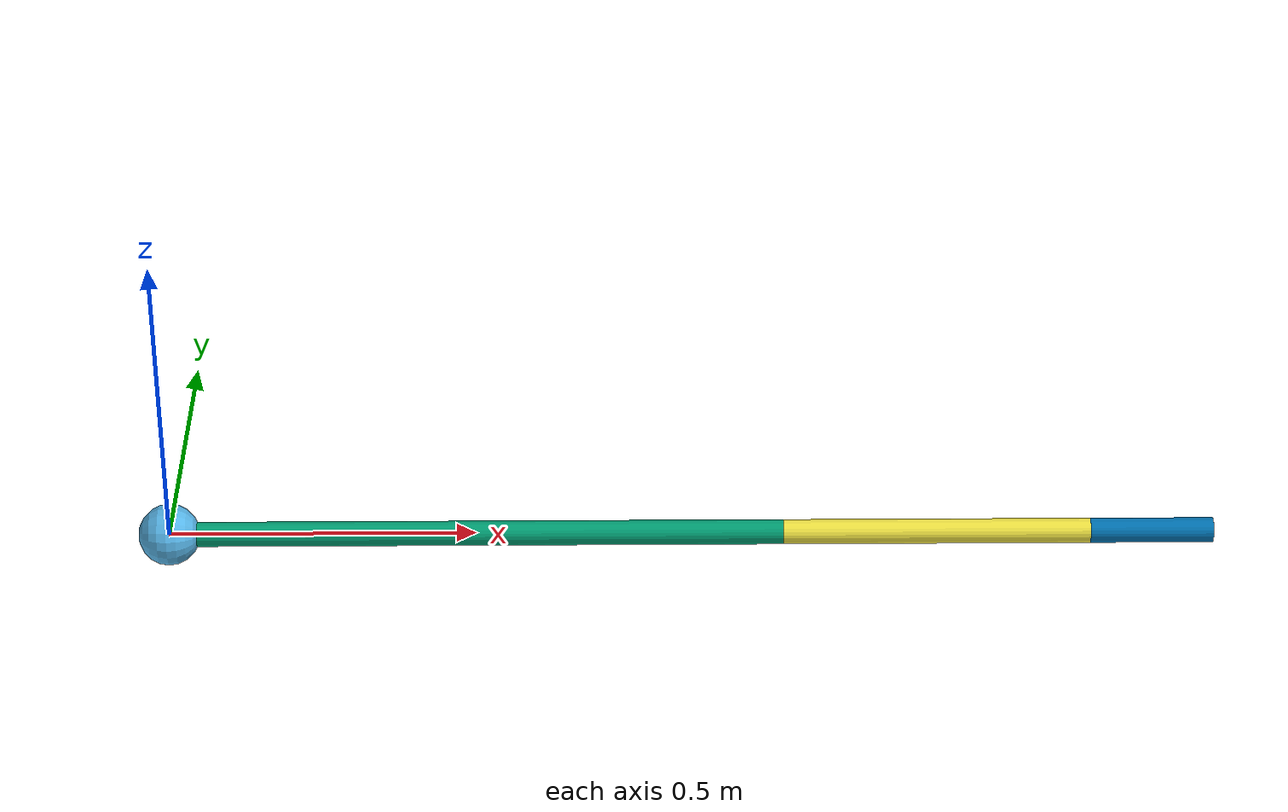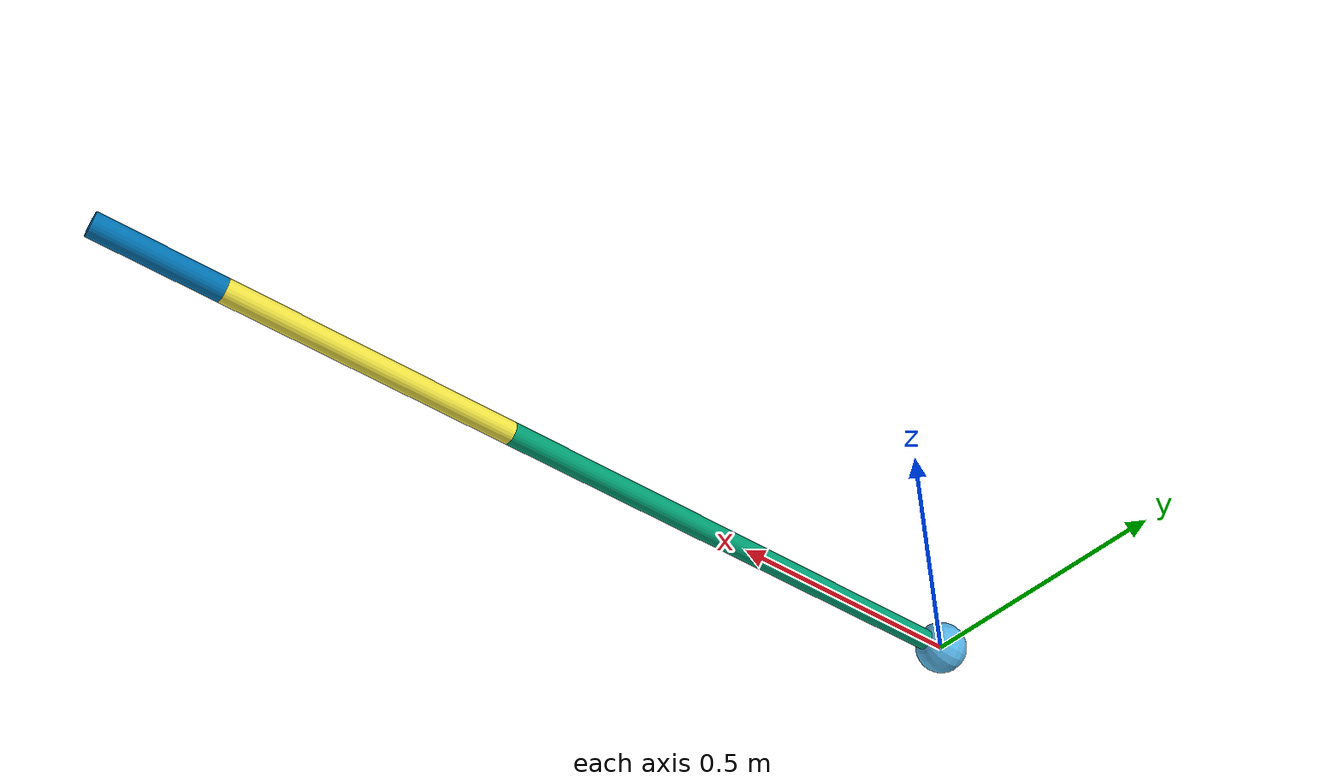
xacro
<?xml version="1.0"?>
<robot xmlns:xacro="http://www.ros.org/wiki/xacro" name="m">
  <xacro:property name="L1" value="1.0"/>
  <xacro:property name="L2" value="0.5"/>
  <xacro:property name="L3" value="0.2"/>
  <xacro:property name="rho" value="0.5"/>

  <gazebo>
    <plugin name="gazebo_ros_control" filename="libgazebo_ros_control.so">
      <robotNamespace>/rrr</robotNamespace>
    </plugin>
  </gazebo>

  <gazebo reference="">
    <self_collide>1</self_collide>
  </gazebo>
  <link name="world">
    <inertial>
      <mass value="1.0" />
      <inertia ixx="1.0" ixy="0.0" ixz="0.0" iyy="1.0" iyz="0.0" izz="1.0" />
    </inertial>
  </link>

  <link name="link0">
    <visual>
      <geometry>
        <sphere radius="0.05"/>
      </geometry>
      <origin xyz="0 0 0" rpy="0 1.5707963 0"/>
    </visual>
    <inertial>
      <mass value="1.0" />
      <inertia ixx="1.0" ixy="0.0" ixz="0.0" iyy="1.0" iyz="0.0" izz="1.0" />
    </inertial>
  </link>

  <link name="link1">
    <visual>
      <geometry>
  	<cylinder length="${L1}" radius="0.02"/>
      </geometry>
      <origin xyz="${L1/2} 0 0" rpy="0 1.5707963 0"/>
    </visual>
    <collision>
      <geometry>
        <cylinder length="${L1-0.1}" radius="0.05"/>
      </geometry>
      <origin xyz="${L1/2} 0 0" rpy="0 1.5707963 0"/>
    </collision>
    <inertial>
      <origin xyz="0 0 0" rpy="0 0 0"/>
      <mass value="${rho*L1}"/>
      <inertia ixx="${(rho*L1*L1*L1)/12}"  ixy="0"  ixz="0" iyy="0" iyz="0" izz="${(rho*L1*L1*L1)/3}" />
    </inertial>
  </link>

  <link name="link2">
    <visual>
      <geometry>
        <cylinder length="${L2}" radius="0.02"/>
      </geometry>
      <origin xyz="${L2/2} 0 0" rpy="0 1.5707963 0"/>
    </visual>
    <collision>
      <geometry>
        <cylinder length="${L2-0.1}" radius="0.05"/>
      </geometry>
      <origin xyz="${L2/2} 0 0" rpy="0 1.5707963 0"/>
    </collision>
    <inertial>
      <origin xyz="0 0 0" rpy="0 0 0"/>
      <mass value="${rho*L2}"/>
      <inertia ixx="${(rho*L2*L2*L2)/12}"  ixy="0"  ixz="0" iyy="0" iyz="0" izz="${(rho*L2*L2*L2)/3}" />
    </inertial>
  </link>

  <link name="link3">
    <visual>
      <geometry>
        <cylinder length="${L3}" radius="0.02"/>
      </geometry>
      <origin xyz="${L3/2} 0 0" rpy="0 1.5707963 0"/>
    </visual>
    <collision>
      <geometry>
        <cylinder length="${L3-0.1}" radius="0.05"/>
      </geometry>
      <origin xyz="${L3/2} 0 0" rpy="0 1.5707963 0"/>
    </collision>
    <inertial>
      <origin xyz="0 0 0" rpy="0 0 0"/>
      <mass value="${rho*L3}"/>
      <inertia ixx="${(rho*L3*L3*L3)/12}"  ixy="0"  ixz="0" iyy="0" iyz="0" izz="${(rho*L3*L3*L3)/3}" />
   </inertial>
  </link>

  <joint name="fixed" type="fixed">
    <origin xyz="0 0 0" rpy="0 0 0"/>
    <parent link="world"/>
    <child link="link0"/>
  </joint>

  <joint name="joint1" type="continuous">
    <origin xyz="0 0 0" rpy="0 0 0"/>
    <axis xyz="0 0 1" />
    <dynamics damping="0.5"/>
    <parent link="link0"/>
    <child link="link1"/>
  </joint>

  <joint name="joint2" type="continuous">
    <origin xyz="${L1} 0 0" rpy="0 0 0"/>
    <axis xyz="0 0 1" />
    <dynamics damping="0.5"/>
    <parent link="link1"/>
    <child link="link2"/>
  </joint>

  <joint name="joint3" type="continuous">
    <origin xyz="${L2} 0 0" rpy="0 0 0"/>
    <axis xyz="0 0 1" />
    <dynamics damping="0.5"/>
    <parent link="link2"/>
    <child link="link3"/>
  </joint>

  <transmission name="tran1">
    <type>transmission_interface/SimpleTransmission</type>
    <joint name="joint1">
      <hardwareInterface>hardware_interface/EffortJointInterface</hardwareInterface>
    </joint>
    <actuator name="motor1">
      <hardwareInterface>hardware_interface/EffortJointInterface</hardwareInterface>
      <mechanicalReduction>1</mechanicalReduction>
    </actuator>
  </transmission>

  <transmission name="tran2">
    <type>transmission_interface/SimpleTransmission</type>
    <joint name="joint2">
      <hardwareInterface>hardware_interface/EffortJointInterface</hardwareInterface>
    </joint>
    <actuator name="motor2">
      <hardwareInterface>hardware_interface/EffortJointInterface</hardwareInterface>
      <mechanicalReduction>1</mechanicalReduction>
    </actuator>
  </transmission>

  <transmission name="tran3">
    <type>transmission_interface/SimpleTransmission</type>
    <joint name="joint3">
      <hardwareInterface>hardware_interface/EffortJointInterface</hardwareInterface>
    </joint>
    <actuator name="motor3">
      <hardwareInterface>hardware_interface/EffortJointInterface</hardwareInterface>
      <mechanicalReduction>1</mechanicalReduction>
    </actuator>
  </transmission>
</robot>
